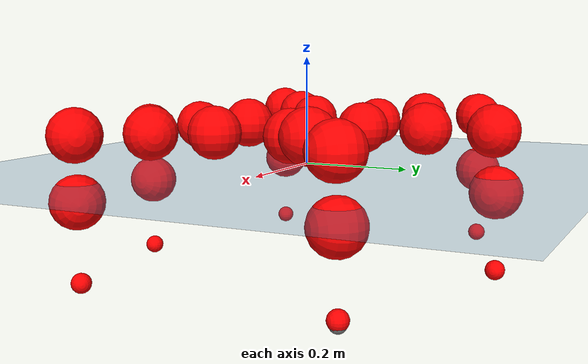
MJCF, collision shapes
<mujoco model="Golem">
  <compiler angle="radian" assetdir="assets" balanceinertia="true" inertiafromgeom="false"/>

  <option timestep="0.005" density="1.2" viscosity="2e-05"/>

  <size nkey="1"/>

  <visual>
    <quality shadowsize="8192"/>
    <map shadowclip="0.5"/>
  </visual>

  <default>
    <default class="/">
      <joint armature="0.01" damping="0.01" frictionloss="0.01"/>
      <geom contype="0" conaffinity="0" group="1" solref="-1000 -80"/>
      <site size="0.01 0.005 0.005" group="5"/>
      <general forcelimited="true" biastype="affine" gainprm="25" biasprm="0 -25 -0.5"/>
      <default class="visual">
        <geom type="mesh" group="2"/>
      </default>
      <default class="collision">
        <geom group="3"/>
      </default>
      <default class="foot">
        <geom size="0.01 0 0" condim="6" group="4" priority="1" solimp="0.015 1 0.01"/>
      </default>
      <default class="reward_collision_sphere">
        <geom group="5" rgba="1 0 0 1"/>
      </default>
    </default>
  </default>

  <asset>
    <texture type="skybox" colorspace="auto" name="//unnamed_texture_0" builtin="gradient" rgb1="0.95 0.95 0.95" rgb2="0.95 0.95 0.95" width="100" height="600"/>
    <texture type="2d" colorspace="auto" name="texplane" builtin="checker" rgb1="0.345 0.575 0.748" rgb2="0.345 0.575 0.748" markrgb="1 1 1" width="512" height="512"/>
    <material name="MatPlane" class="/" texture="texplane" texuniform="true" texrepeat="2 2" specular="0.9"/>
    <mesh name="body" class="/" file="body.stl" scale="0.001 0.001 0.001"/>
    <mesh name="coxa" class="/" file="coxa.stl" scale="0.001 0.001 0.001"/>
    <mesh name="femur" class="/" file="femur.stl" scale="0.001 0.001 0.001"/>
    <mesh name="tibia" class="/" file="tibia.stl" scale="0.001 0.001 0.001"/>
    <mesh name="tarsus" class="/" file="tarsus.stl" scale="0.001 0.001 0.001"/>
  </asset>

  <worldbody>
    <geom name="floor" class="/" size="100 100 0.125" type="plane" group="0" material="MatPlane"/>
    <light name="toplight_shadow" class="/" pos="0 0 5" dir="0.0990148 0.0990148 -0.990148" type="directional" ambient="0.04 0.04 0.04" diffuse="0.55 0.55 0.55" specular="0.12 0.12 0.12"/>
    <light name="toplight_fill" class="/" pos="0 0 5" dir="0.0990148 0.0990148 -0.990148" type="directional" castshadow="false" ambient="0.04 0.04 0.04" diffuse="0.3 0.3 0.3" specular="0.08 0.08 0.08"/>
    <body name="trunk" pos="0.00555706 0.00110962 0.00203709" quat="0.99999 0.00435598 -0.000842517 5.63778e-05">
      <inertial pos="-0.000907684 -0.010042 -0.00959393" quat="0.999851 0.0112051 0.000458976 0.0130967" mass="6.28345" diaginertia="0.0376583 0.0183618 0.0176102"/>
      <joint name="//unnamed_joint_0" type="free"/>
      <geom name="//unnamed_geom_1" class="/" pos="0 0 0.0702943" quat="1 0 0 0" type="mesh" rgba="0.9 0.9 0.9 1" mesh="body"/>
      <site name="imu" class="/" pos="0.158048 -0.0348629 0.124071" size="0.0116631"/>
      <camera name="track" class="/" pos="0 -2.24713 0" quat="0.707107 0.707107 0 0" mode="trackcom"/>
      <camera name="ego_camera" class="/" pos="0.166013 0 0.109835" quat="-0.5 -0.5 0.5 0.5"/>
      <body name="coxa_RR" pos="-0.224032 -0.100576 0.068888" quat="0.383373 0.000990518 -0.0035158 -0.923586">
        <inertial pos="-0.00444065 -0.00209486 -0.00238582" quat="0.998688 -0.0140828 0.0492283 -0.000643376" mass="0.251126" diaginertia="0.0305391 0.0158631 0.014444"/>
        <joint name="coxa_joint_RR" class="/" pos="0 0 0" axis="0.00060211 0.000579328 -1" range="-3.12357 3.34125" armature="0.00595717" damping="0" frictionloss="0.011416"/>
        <geom name="//unnamed_geom_2" class="/" type="mesh" rgba="0.2 0.2 0.2 1" mesh="coxa"/>
        <geom name="//unnamed_geom_3" class="reward_collision_sphere" size="0.0466524" pos="-0.0383106 0 0"/>
        <body name="femur_RR" pos="0.0734305 -0.00763852 0.00437064" quat="0.501024 -0.498379 0.500222 0.50037">
          <inertial pos="-0.00827487 -0.00196641 -0.00164911" quat="0.999224 -0.0141484 0.0053673 -0.0363671" mass="0.322676" diaginertia="0.0341583 0.0180622 0.0162494"/>
          <joint name="femur_joint_RR" class="/" pos="0 0 0" axis="0.00970419 0.00217938 -0.999951" range="-3.21349 3.22387" armature="0.0114195" damping="0.0563607" frictionloss="0.0105681"/>
          <geom name="//unnamed_geom_4" class="/" type="mesh" rgba="0.9 0.9 0.9 1" mesh="femur"/>
          <geom name="//unnamed_geom_5" class="reward_collision_sphere" size="0.0466524"/>
          <body name="tibia_RR" pos="-0.00196455 -0.130409 -0.00393728" quat="0.00150511 0.999999 0.000297118 0.000434723">
            <inertial pos="0.00583324 0.00229617 0.00206638" quat="0.999949 0.00580479 -0.00240156 0.00786876" mass="0.28194" diaginertia="0.0338284 0.0177797 0.0150434"/>
            <joint name="tibia_joint_RR" class="/" pos="0 0 0" axis="-0.032943 -0.00699772 0.999433" range="-3.10685 3.1029" armature="0.0113983" damping="0.0173303" frictionloss="0.0126677"/>
            <geom name="//unnamed_geom_6" class="/" type="mesh" rgba="0.2 0.2 0.2 1" mesh="tibia"/>
            <geom name="//unnamed_geom_7" class="reward_collision_sphere" size="0.0466524"/>
            <body name="tarsus_RR" pos="0.119205 -0.00549735 0.000285492" quat="0.999998 -0.000523432 0.000350529 -0.00191688">
              <inertial pos="0.0816509 -0.000816375 0.00198713" quat="0.497269 0.502817 0.496975 0.502906" mass="0.282386" diaginertia="0.0299696 0.0156037 0.014654"/>
              <joint name="tarsus_joint_RR" class="/" pos="0 0 0" axis="-0.00802033 -0.00275447 0.999964" stiffness="0.0107644" range="-3.1218 3.13683" armature="0.0125459" damping="0.0396919" frictionloss="0.0153952"/>
              <geom name="//unnamed_geom_8" class="/" type="mesh" rgba="0.9 0.9 0.9 1" mesh="tarsus"/>
              <geom name="foot_1" class="foot" size="0.0105732" pos="0.143026 0 0" quat="0 -0.707107 0 0.707107"/>
              <geom name="//unnamed_geom_10" class="reward_collision_sphere" size="0.0466524"/>
              <geom name="//unnamed_geom_11" class="reward_collision_sphere" size="0.0174947" pos="0.13728 0 0"/>
              <site name="foot_1" class="foot" pos="0.143026 0 0" quat="0 -0.707107 0 0.707107" size="0.0116631"/>
            </body>
          </body>
        </body>
      </body>
      <body name="coxa_RM" pos="0.00829248 -0.156199 0.0730337" quat="0.70704 0.000178481 -0.000520098 -0.707173">
        <inertial pos="0.00793099 0.00212991 -0.000500774" quat="0.999962 0.00254234 0.00832107 -0.000239802" mass="0.285209" diaginertia="0.0313722 0.0154845 0.0146576"/>
        <joint name="coxa_joint_RM" class="/" pos="0 0 0" axis="-0.00699976 -0.0050356 -0.999963" range="-3.26446 3.12458" armature="0.00826507" damping="0.000580182" frictionloss="0.0107041"/>
        <geom name="//unnamed_geom_12" class="/" type="mesh" rgba="0.2 0.2 0.2 1" mesh="coxa"/>
        <geom name="//unnamed_geom_13" class="reward_collision_sphere" size="0.0466524" pos="-0.0383106 0 0"/>
        <body name="femur_RM" pos="0.0785947 -0.00952081 -0.00802159" quat="0.499331 -0.500672 0.498952 0.501041">
          <inertial pos="0.00163817 0.00341915 -0.00147641" quat="0.998872 0.0456442 -0.00837443 0.0100807" mass="0.346943" diaginertia="0.0394819 0.0206971 0.0179269"/>
          <joint name="femur_joint_RM" class="/" pos="0 0 0" axis="0.00152389 0.00126645 -0.999998" range="-2.94363 3.14098" armature="0.013023" damping="0.0132256" frictionloss="0.0118213"/>
          <geom name="//unnamed_geom_14" class="/" type="mesh" rgba="0.9 0.9 0.9 1" mesh="femur"/>
          <geom name="//unnamed_geom_15" class="reward_collision_sphere" size="0.0466524"/>
          <body name="tibia_RM" pos="0.00795636 -0.122248 -0.00040058" quat="-0.00238141 0.999987 0.000546139 0.0043677">
            <inertial pos="0.00513528 -0.000676614 -5.14498e-05" quat="0.999554 -0.0198999 -0.0211856 -0.00689571" mass="0.315526" diaginertia="0.0323648 0.01922 0.0175449"/>
            <joint name="tibia_joint_RM" class="/" pos="0 0 0" axis="0.00210443 -0.00166641 0.999996" stiffness="0.0412143" range="-3.14766 3.12644" armature="0.0108057" damping="0.0327098" frictionloss="0.0116387"/>
            <geom name="//unnamed_geom_16" class="/" type="mesh" rgba="0.2 0.2 0.2 1" mesh="tibia"/>
            <geom name="//unnamed_geom_17" class="reward_collision_sphere" size="0.0466524"/>
            <body name="tarsus_RM" pos="0.111268 -0.00063937 0.0060409" quat="0.999992 -0.00202551 0.00343838 0.000129572">
              <inertial pos="0.0743112 0.00140901 0.00079768" quat="0.500109 0.499736 0.503702 0.496425" mass="0.322978" diaginertia="0.0333621 0.0182473 0.014876"/>
              <joint name="tarsus_joint_RM" class="/" pos="0 0 0" axis="0.0138467 0.0329235 0.999362" range="-3.03644 2.93998" armature="0.0139478" damping="0.00304336" frictionloss="0.017462"/>
              <geom name="//unnamed_geom_18" class="/" type="mesh" rgba="0.9 0.9 0.9 1" mesh="tarsus"/>
              <geom name="foot_2" class="foot" size="0.0115619" pos="0.143026 0 0" quat="0 -0.707107 0 0.707107"/>
              <geom name="//unnamed_geom_20" class="reward_collision_sphere" size="0.0466524"/>
              <geom name="//unnamed_geom_21" class="reward_collision_sphere" size="0.0174947" pos="0.13728 0 0"/>
              <site name="foot_2" class="foot" pos="0.143026 0 0" quat="0 -0.707107 0 0.707107" size="0.0116631"/>
            </body>
          </body>
        </body>
      </body>
      <body name="coxa_RF" pos="0.235211 -0.100063 0.0728258" quat="0.924423 -0.000944033 0.00361113 -0.38135">
        <inertial pos="-0.00828318 -0.00854851 0.000356903" quat="0.999954 0.00738619 0.0049807 -0.0036123" mass="0.32372" diaginertia="0.0339188 0.018958 0.0163905"/>
        <joint name="coxa_joint_RF" class="/" pos="0 0 0" axis="0.00399511 -0.0102413 -0.99994" stiffness="0.0495807" range="-3.19025 3.31107" armature="0.0125664" damping="0" frictionloss="0.0126219"/>
        <geom name="//unnamed_geom_22" class="/" type="mesh" rgba="0.2 0.2 0.2 1" mesh="coxa"/>
        <geom name="//unnamed_geom_23" class="reward_collision_sphere" size="0.0466524" pos="-0.0383106 0 0"/>
        <body name="femur_RF" pos="0.0716764 0.000603707 0.0043137" quat="0.502075 -0.498668 0.501631 0.497611">
          <inertial pos="-0.000309003 0.00378314 -0.00944698" quat="0.999356 0.0023585 0.0245294 -0.026084" mass="0.334188" diaginertia="0.0379833 0.0199998 0.0197504"/>
          <joint name="femur_joint_RF" class="/" pos="0 0 0" axis="-0.0447525 -0.0192659 -0.998812" range="-3.17451 3.21115" armature="0.00541143" damping="0.0254826" frictionloss="0.00817906"/>
          <geom name="//unnamed_geom_24" class="/" type="mesh" rgba="0.9 0.9 0.9 1" mesh="femur"/>
          <geom name="//unnamed_geom_25" class="reward_collision_sphere" size="0.0466524"/>
          <body name="tibia_RF" pos="-0.00135913 -0.124064 0.000435581" quat="-0.000776914 0.999999 0.000844791 -0.00116286">
            <inertial pos="-0.00277632 0.000336519 -0.00175088" quat="0.999507 0.0209168 -0.00708001 0.0223259" mass="0.338386" diaginertia="0.0372037 0.0197039 0.0150344"/>
            <joint name="tibia_joint_RF" class="/" pos="0 0 0" axis="-0.000776451 -0.000798781 0.999999" stiffness="0.0204706" range="-3.12568 2.96666" armature="0.0126344" damping="0.0161193" frictionloss="0.0110379"/>
            <geom name="//unnamed_geom_26" class="/" type="mesh" rgba="0.2 0.2 0.2 1" mesh="tibia"/>
            <geom name="//unnamed_geom_27" class="reward_collision_sphere" size="0.0466524"/>
            <body name="tarsus_RF" pos="0.110974 0.000524056 -6.14321e-05" quat="0.999988 0.00110064 0.00469426 9.23552e-05">
              <inertial pos="0.0773911 8.85371e-05 -0.00100571" quat="0.510395 0.489675 0.487274 0.512133" mass="0.332734" diaginertia="0.036209 0.0183652 0.0184441"/>
              <joint name="tarsus_joint_RF" class="/" pos="0 0 0" axis="-0.000530503 0.00267935 0.999996" range="-3.12408 3.09663" armature="0.0120247" damping="0.0183149" frictionloss="0.00922696"/>
              <geom name="//unnamed_geom_28" class="/" type="mesh" rgba="0.9 0.9 0.9 1" mesh="tarsus"/>
              <geom name="foot_3" class="foot" size="0.0082809" pos="0.143026 0 0" quat="0 -0.707107 0 0.707107"/>
              <geom name="//unnamed_geom_30" class="reward_collision_sphere" size="0.0466524"/>
              <geom name="//unnamed_geom_31" class="reward_collision_sphere" size="0.0174947" pos="0.13728 0 0"/>
              <site name="foot_3" class="foot" pos="0.143026 0 0" quat="0 -0.707107 0 0.707107" size="0.0116631"/>
            </body>
          </body>
        </body>
      </body>
      <body name="coxa_LR" pos="-0.225312 0.0959293 0.0653695" quat="0.379766 -0.000426492 0.00211286 0.92508">
        <inertial pos="0.000281789 -0.0022084 -0.000704667" quat="0.99996 -0.00103863 0.006509 -0.00606104" mass="0.334859" diaginertia="0.0379044 0.0186688 0.018361"/>
        <joint name="coxa_joint_LR" class="/" pos="0 0 0" axis="0.00736474 -0.0361142 -0.999321" stiffness="0.00887303" range="-3.27542 3.14255" armature="0.0130097" damping="0" frictionloss="0.0125764"/>
        <geom name="//unnamed_geom_32" class="/" type="mesh" rgba="0.2 0.2 0.2 1" mesh="coxa"/>
        <geom name="//unnamed_geom_33" class="reward_collision_sphere" size="0.0466524" pos="-0.0383106 0 0"/>
        <body name="femur_LR" pos="0.0679109 0.000798679 0.00848128" quat="0.500511 -0.499785 0.499589 0.500115">
          <inertial pos="0.00133831 -0.001643 -0.0029709" quat="0.999956 -0.00733324 -0.000558241 -0.00586769" mass="0.31309" diaginertia="0.0327707 0.0187184 0.0151951"/>
          <joint name="femur_joint_LR" class="/" pos="0 0 0" axis="0.00334395 -0.00704699 0.99997" stiffness="0.0257012" range="-2.98006 2.98311" armature="0.0112167" damping="0.04553" frictionloss="0.0119537"/>
          <geom name="//unnamed_geom_34" class="/" type="mesh" rgba="0.9 0.9 0.9 1" mesh="femur"/>
          <geom name="//unnamed_geom_35" class="reward_collision_sphere" size="0.0466524"/>
          <body name="tibia_LR" pos="0.00397625 -0.126851 -0.00150793" quat="2.02372e-05 1 0.000144052 4.16436e-05">
            <inertial pos="0.00982674 0.000772884 0.00849599" quat="0.999975 -0.00334517 0.00541176 -0.00303052" mass="0.316874" diaginertia="0.0340107 0.0159653 0.0166273"/>
            <joint name="tibia_joint_LR" class="/" pos="0 0 0" axis="0.00478976 -0.00710388 -0.999963" stiffness="0.0228389" range="-3.30842 3.01519" armature="0.0135481" damping="0" frictionloss="0.0124377"/>
            <geom name="//unnamed_geom_36" class="/" type="mesh" rgba="0.2 0.2 0.2 1" mesh="tibia"/>
            <geom name="//unnamed_geom_37" class="reward_collision_sphere" size="0.0466524"/>
            <body name="tarsus_LR" pos="0.11673 0.00330905 -0.000377297" quat="1 -0.000139 0.00035438 0.000520421">
              <inertial pos="0.0764221 0.00161427 -0.000372468" quat="0.500824 0.497699 0.493722 0.507651" mass="0.295207" diaginertia="0.0320091 0.0151736 0.014471"/>
              <joint name="tarsus_joint_LR" class="/" pos="0 0 0" axis="-0.0289933 -0.0320062 -0.999067" range="-3.16564 3.26191" armature="0.0111498" damping="0.0195214" frictionloss="0.00814386"/>
              <geom name="//unnamed_geom_38" class="/" type="mesh" rgba="0.9 0.9 0.9 1" mesh="tarsus"/>
              <geom name="foot_4" class="foot" size="0.0114532" pos="0.143026 0 0" quat="0.707107 0 -0.707107 0"/>
              <geom name="//unnamed_geom_40" class="reward_collision_sphere" size="0.0466524"/>
              <geom name="//unnamed_geom_41" class="reward_collision_sphere" size="0.0174947" pos="0.13728 0 0"/>
              <site name="foot_4" class="foot" pos="0.143026 0 0" quat="0.707107 0 -0.707107 0" size="0.0116631"/>
            </body>
          </body>
        </body>
      </body>
      <body name="coxa_LM" pos="0.00146717 0.155287 0.0704011" quat="0.706725 0.000897048 -0.000360302 0.707488">
        <inertial pos="-0.00835892 -0.0095741 -0.000746239" quat="0.999999 -0.000624187 0.00087413 -0.000176829" mass="0.316874" diaginertia="0.0338003 0.0179706 0.0160499"/>
        <joint name="coxa_joint_LM" class="/" pos="0 0 0" axis="0.00239083 0.000260297 -0.999997" stiffness="0.0291247" range="-3.22318 3.22404" armature="0.00731172" damping="0.0443498" frictionloss="0.00934987"/>
        <geom name="//unnamed_geom_42" class="/" type="mesh" rgba="0.2 0.2 0.2 1" mesh="coxa"/>
        <geom name="//unnamed_geom_43" class="reward_collision_sphere" size="0.0466524" pos="-0.0383106 0 0"/>
        <body name="femur_LM" pos="0.0836079 -0.00484721 0.00253398" quat="0.501019 -0.502869 0.499503 0.496588">
          <inertial pos="0.00484126 -0.00399817 -0.00116115" quat="0.999524 -0.00543138 -0.0199174 -0.0229338" mass="0.316189" diaginertia="0.0313535 0.0190075 0.0160125"/>
          <joint name="femur_joint_LM" class="/" pos="0 0 0" axis="-0.00201686 0.000872075 0.999998" range="-3.17437 3.14736" armature="0.0172926" damping="0.0378614" frictionloss="0.0128356"/>
          <geom name="//unnamed_geom_44" class="/" type="mesh" rgba="0.9 0.9 0.9 1" mesh="femur"/>
          <geom name="//unnamed_geom_45" class="reward_collision_sphere" size="0.0466524"/>
          <body name="tibia_LM" pos="0.0014341 -0.12067 0.00561274" quat="-0.000742548 1 0.000302842 -0.000221925">
            <inertial pos="-0.000879601 -0.00762382 -0.00281055" quat="0.999985 0.00259156 0.00267012 -0.00406831" mass="0.334074" diaginertia="0.0362136 0.0172337 0.0149286"/>
            <joint name="tibia_joint_LM" class="/" pos="0 0 0" axis="-0.0187514 -0.00972911 -0.999777" stiffness="0.00324757" range="-3.11447 3.02639" armature="0.0112453" damping="0.0396547" frictionloss="0.0141184"/>
            <geom name="//unnamed_geom_46" class="/" type="mesh" rgba="0.2 0.2 0.2 1" mesh="tibia"/>
            <geom name="//unnamed_geom_47" class="reward_collision_sphere" size="0.0466524"/>
            <body name="tarsus_LM" pos="0.106728 0.0046207 -0.000707372" quat="1 -0.000106477 -0.000185478 -0.000303178">
              <inertial pos="0.0750623 0.00158945 0.00104175" quat="0.512278 0.492107 0.491946 0.50338" mass="0.251967" diaginertia="0.0296324 0.016536 0.0157812"/>
              <joint name="tarsus_joint_LM" class="/" pos="0 0 0" axis="0.00744385 0.00805739 -0.99994" range="-3.13698 3.24139" armature="0.0103379" damping="0" frictionloss="0.0118426"/>
              <geom name="//unnamed_geom_48" class="/" type="mesh" rgba="0.9 0.9 0.9 1" mesh="tarsus"/>
              <geom name="foot_5" class="foot" size="0.0112892" pos="0.143026 0 0" quat="0.707107 0 -0.707107 0"/>
              <geom name="//unnamed_geom_50" class="reward_collision_sphere" size="0.0466524"/>
              <geom name="//unnamed_geom_51" class="reward_collision_sphere" size="0.0174947" pos="0.13728 0 0"/>
              <site name="foot_5" class="foot" pos="0.143026 0 0" quat="0.707107 0 -0.707107 0" size="0.0116631"/>
            </body>
          </body>
        </body>
      </body>
      <body name="coxa_LF" pos="0.227985 0.0972838 0.0721303" quat="0.923876 -1.94855e-05 6.55368e-05 0.382691">
        <inertial pos="0.000989406 0.000111744 6.96547e-05" quat="0.999999 -0.000166038 -0.00129114 0.000717321" mass="0.341627" diaginertia="0.035862 0.017637 0.0156066"/>
        <joint name="coxa_joint_LF" class="/" pos="0 0 0" axis="-0.0196063 -0.0399631 -0.999009" stiffness="0.0034003" range="-3.09829 3.18829" armature="0.010914" damping="0.0169253" frictionloss="0.0120349"/>
        <geom name="//unnamed_geom_52" class="/" type="mesh" rgba="0.2 0.2 0.2 1" mesh="coxa"/>
        <geom name="//unnamed_geom_53" class="reward_collision_sphere" size="0.0466524" pos="-0.0383106 0 0"/>
        <body name="femur_LF" pos="0.0783277 -0.00972197 0.0101785" quat="0.499995 -0.500005 0.500077 0.499924">
          <inertial pos="0.00720748 -0.00255337 0.000234636" quat="0.999954 0.000138005 -0.00860269 -0.00431137" mass="0.308781" diaginertia="0.0354264 0.0202013 0.0173863"/>
          <joint name="femur_joint_LF" class="/" pos="0 0 0" axis="0.0234819 -0.0256536 0.999395" range="-3.14587 3.3004" armature="0.015366" damping="0.0149165" frictionloss="0.0119905"/>
          <geom name="//unnamed_geom_54" class="/" type="mesh" rgba="0.9 0.9 0.9 1" mesh="femur"/>
          <geom name="//unnamed_geom_55" class="reward_collision_sphere" size="0.0466524"/>
          <body name="tibia_LF" pos="0.00847077 -0.123181 -0.00268385" quat="-0.000105795 1 -6.46421e-05 2.88388e-05">
            <inertial pos="-0.000713574 -0.00273052 0.00135876" quat="0.999162 0.0388855 0.00712441 0.0106179" mass="0.327579" diaginertia="0.0342646 0.0179361 0.01537"/>
            <joint name="tibia_joint_LF" class="/" pos="0 0 0" axis="0.00198431 0.000222302 -0.999998" range="-3.10189 3.20774" armature="0.017505" damping="0.0347491" frictionloss="0.0118779"/>
            <geom name="//unnamed_geom_56" class="/" type="mesh" rgba="0.2 0.2 0.2 1" mesh="tibia"/>
            <geom name="//unnamed_geom_57" class="reward_collision_sphere" size="0.0466524"/>
            <body name="tarsus_LF" pos="0.109791 -0.0025749 -0.00230743" quat="0.999988 -0.00278946 0.0040597 -0.000768103">
              <inertial pos="0.0703607 0.00781753 0.00205421" quat="0.5078 0.496254 0.50108 0.494763" mass="0.350463" diaginertia="0.0367346 0.0191741 0.0169843"/>
              <joint name="tarsus_joint_LF" class="/" pos="0 0 0" axis="-0.0117373 0.0361496 -0.999277" stiffness="0.00523661" range="-3.28558 3.17477" armature="0.01248" damping="0" frictionloss="0.0106092"/>
              <geom name="//unnamed_geom_58" class="/" type="mesh" rgba="0.9 0.9 0.9 1" mesh="tarsus"/>
              <geom name="foot_6" class="foot" size="0.0144493" pos="0.143026 0 0" quat="0.707107 0 -0.707107 0"/>
              <geom name="//unnamed_geom_60" class="reward_collision_sphere" size="0.0466524"/>
              <geom name="//unnamed_geom_61" class="reward_collision_sphere" size="0.0174947" pos="0.13728 0 0"/>
              <site name="foot_6" class="foot" pos="0.143026 0 0" quat="0.707107 0 -0.707107 0" size="0.0116631"/>
            </body>
          </body>
        </body>
      </body>
    </body>
  </worldbody>

  <contact>
    <pair class="/" geom1="floor" geom2="foot_1" name="//unnamed_contact_0"/>
    <pair class="/" geom1="floor" geom2="foot_2" name="//unnamed_contact_1"/>
    <pair class="/" geom1="floor" geom2="foot_3" name="//unnamed_contact_2"/>
    <pair class="/" geom1="floor" geom2="foot_4" name="//unnamed_contact_3"/>
    <pair class="/" geom1="floor" geom2="foot_5" name="//unnamed_contact_4"/>
    <pair class="/" geom1="floor" geom2="foot_6" name="//unnamed_contact_5"/>
  </contact>

  <actuator>
    <general name="coxa_joint_RR" class="/" joint="coxa_joint_RR" forcerange="-9.12037 9.12037" gainprm="25.4735" biasprm="0 -25.4735 -0.624148"/>
    <general name="femur_joint_RR" class="/" joint="femur_joint_RR" forcerange="-8.56068 8.56068" gainprm="25.4735" biasprm="0 -25.4735 -0.624148"/>
    <general name="tibia_joint_RR" class="/" joint="tibia_joint_RR" forcerange="-9.15954 9.15954" gainprm="25.4735" biasprm="0 -25.4735 -0.624148"/>
    <general name="tarsus_joint_RR" class="/" joint="tarsus_joint_RR" forcerange="-8.55636 8.55636" gainprm="25.4735" biasprm="0 -25.4735 -0.624148"/>
    <general name="coxa_joint_RM" class="/" joint="coxa_joint_RM" forcerange="-8.6815 8.6815" gainprm="25.4735" biasprm="0 -25.4735 -0.624148"/>
    <general name="femur_joint_RM" class="/" joint="femur_joint_RM" forcerange="-10.4981 10.4981" gainprm="25.4735" biasprm="0 -25.4735 -0.624148"/>
    <general name="tibia_joint_RM" class="/" joint="tibia_joint_RM" forcerange="-8.35556 8.35556" gainprm="25.4735" biasprm="0 -25.4735 -0.624148"/>
    <general name="tarsus_joint_RM" class="/" joint="tarsus_joint_RM" forcerange="-8.14243 8.14243" gainprm="25.4735" biasprm="0 -25.4735 -0.624148"/>
    <general name="coxa_joint_RF" class="/" joint="coxa_joint_RF" forcerange="-10.678 10.678" gainprm="25.4735" biasprm="0 -25.4735 -0.624148"/>
    <general name="femur_joint_RF" class="/" joint="femur_joint_RF" forcerange="-10.3459 10.3459" gainprm="25.4735" biasprm="0 -25.4735 -0.624148"/>
    <general name="tibia_joint_RF" class="/" joint="tibia_joint_RF" forcerange="-6.81947 6.81947" gainprm="25.4735" biasprm="0 -25.4735 -0.624148"/>
    <general name="tarsus_joint_RF" class="/" joint="tarsus_joint_RF" forcerange="-7.83434 7.83434" gainprm="25.4735" biasprm="0 -25.4735 -0.624148"/>
    <general name="coxa_joint_LR" class="/" joint="coxa_joint_LR" forcerange="-7.9568 7.9568" gainprm="25.4735" biasprm="0 -25.4735 -0.624148"/>
    <general name="femur_joint_LR" class="/" joint="femur_joint_LR" forcerange="-9.57631 9.57631" gainprm="25.4735" biasprm="0 -25.4735 -0.624148"/>
    <general name="tibia_joint_LR" class="/" joint="tibia_joint_LR" forcerange="-11.2871 11.2871" gainprm="25.4735" biasprm="0 -25.4735 -0.624148"/>
    <general name="tarsus_joint_LR" class="/" joint="tarsus_joint_LR" forcerange="-5.5066 5.5066" gainprm="25.4735" biasprm="0 -25.4735 -0.624148"/>
    <general name="coxa_joint_LM" class="/" joint="coxa_joint_LM" forcerange="-7.57305 7.57305" gainprm="25.4735" biasprm="0 -25.4735 -0.624148"/>
    <general name="femur_joint_LM" class="/" joint="femur_joint_LM" forcerange="-8.81161 8.81161" gainprm="25.4735" biasprm="0 -25.4735 -0.624148"/>
    <general name="tibia_joint_LM" class="/" joint="tibia_joint_LM" forcerange="-8.62683 8.62683" gainprm="25.4735" biasprm="0 -25.4735 -0.624148"/>
    <general name="tarsus_joint_LM" class="/" joint="tarsus_joint_LM" forcerange="-9.07563 9.07563" gainprm="25.4735" biasprm="0 -25.4735 -0.624148"/>
    <general name="coxa_joint_LF" class="/" joint="coxa_joint_LF" forcerange="-8.53025 8.53025" gainprm="25.4735" biasprm="0 -25.4735 -0.624148"/>
    <general name="femur_joint_LF" class="/" joint="femur_joint_LF" forcerange="-8.4364 8.4364" gainprm="25.4735" biasprm="0 -25.4735 -0.624148"/>
    <general name="tibia_joint_LF" class="/" joint="tibia_joint_LF" forcerange="-8.15022 8.15022" gainprm="25.4735" biasprm="0 -25.4735 -0.624148"/>
    <general name="tarsus_joint_LF" class="/" joint="tarsus_joint_LF" forcerange="-7.90009 7.90009" gainprm="25.4735" biasprm="0 -25.4735 -0.624148"/>
  </actuator>

  <sensor>
    <gyro site="imu" name="imu_angular_velocity"/>
    <velocimeter site="imu" name="imu_linear_velocity"/>
    <framelinvel objtype="site" objname="foot_1" name="foot_1_global_linear_velocity"/>
    <framelinvel objtype="site" objname="foot_2" name="foot_2_global_linear_velocity"/>
    <framelinvel objtype="site" objname="foot_3" name="foot_3_global_linear_velocity"/>
    <framelinvel objtype="site" objname="foot_4" name="foot_4_global_linear_velocity"/>
    <framelinvel objtype="site" objname="foot_5" name="foot_5_global_linear_velocity"/>
    <framelinvel objtype="site" objname="foot_6" name="foot_6_global_linear_velocity"/>
  </sensor>

  <keyframe>
    <key name="home" qpos="0 0 0.1457 1 0 0 0 0 0 0 0 0 0 0 0 0 0 0 0 0 0 0 0 0 0 0 0 0 0 0 0"/>
  </keyframe>
</mujoco>
